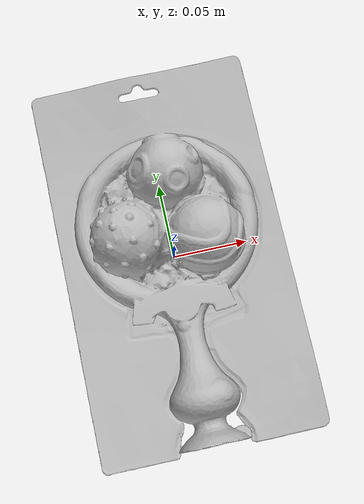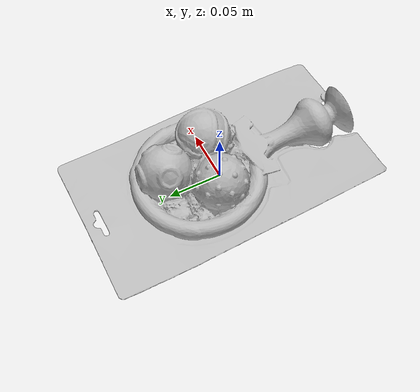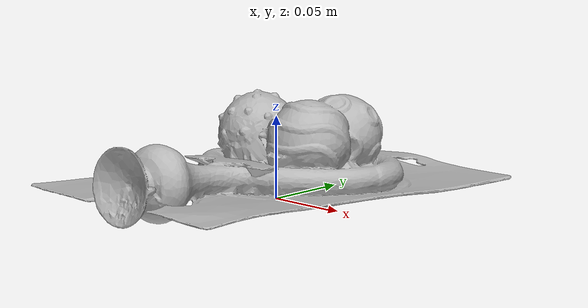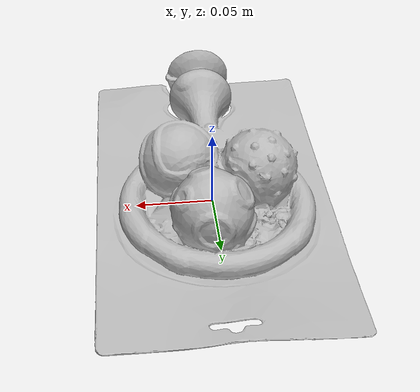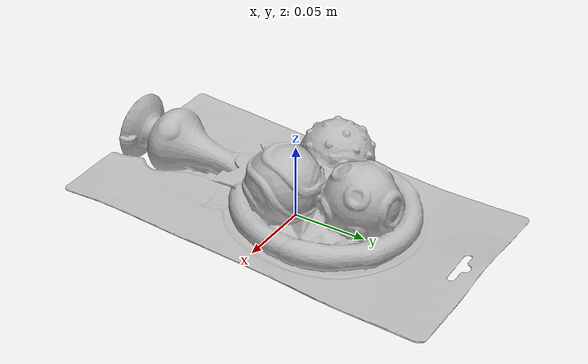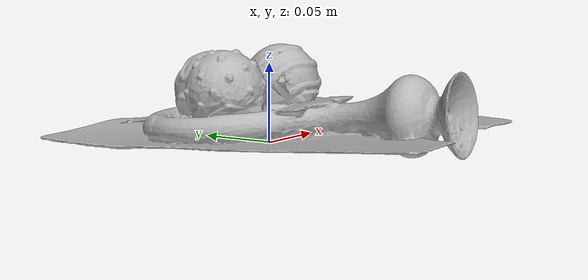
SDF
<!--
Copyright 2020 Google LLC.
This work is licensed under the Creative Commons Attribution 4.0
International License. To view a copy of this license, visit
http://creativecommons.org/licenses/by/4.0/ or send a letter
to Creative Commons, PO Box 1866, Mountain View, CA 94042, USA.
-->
<?xml version="1.0" ?>
<sdf version="1.6">
  <model name="The_Scooper_Hooper">
    <link name="link_0">
      <visual name="visual">
        <geometry>
          <mesh>
            <uri>meshes/model.obj</uri>
          </mesh>
        </geometry>
      </visual>
      <collision name="collision_0">
        <geometry>
          <mesh>
            <uri>meshes/model.obj</uri>
          </mesh>
        </geometry>
      </collision>
    </link>
  </model>
</sdf>
